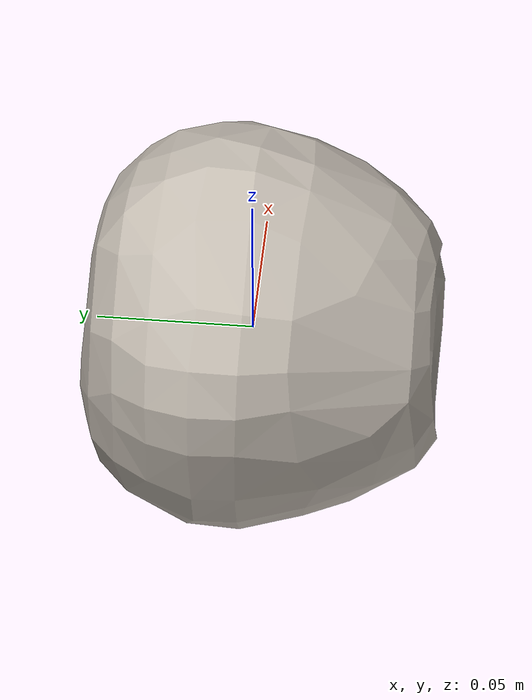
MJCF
<mujoco model="Apple_30">
  <compiler autolimits="true" boundmass="0.01" angle="radian"/>
  <default>
    <default class="/">
      <default class="__VISUAL_MJT__">
        <geom contype="0" conaffinity="0" group="0"/>
      </default>
      <default class="__STRUCTURAL_MJT__">
        <geom contype="8" conaffinity="15" group="4" friction="0.90000000000000002 0.90000000000000002 0.001" solref="0.025000000000000001 1" solimp="0.998 0.998 0.001"/>
      </default>
      <default class="__DYNAMIC_MJT__">
        <geom contype="1" conaffinity="15" group="4" friction="0.90000000000000002 0.90000000000000002 0.001" solref="0.025000000000000001 1" solimp="0.998 0.998 0.001"/>
      </default>
    </default>
  </default>
  <asset>
    <texture name="Apple2_Mat3" type="2d" file="Apple2_AlbedoTransparency3.png"/>
    <material name="material_Apple2_Mat3" class="/" texture="Apple2_Mat3" specular="0.5" shininess="0.5" rgba="1 1 1 1"/>
    <mesh name="Apple_30_apple_b15" class="/" file="Apple_30_apple_b15/Apple_30_apple_b15.obj" scale="1 1 1"/>
  </asset>
  <worldbody>
    <body name="Apple_30">
      <joint name="Apple_30_free" class="/" type="free" pos="0 0 0" axis="0 0 1" stiffness="0" range="0 0" armature="0" damping="0.10000000000000001" frictionloss="0"/>
      <body name="Apple_30_apple_b15" pos="-0 0.0088599999999999998 0" quat="1 0 0 0">
        <geom name="Apple_30_apple_b15" class="__VISUAL_MJT__" type="mesh" material="material_Apple2_Mat3" shellinertia="false" mesh="Apple_30_apple_b15"/>
        <geom name="Apple_30_PrimitiveCollider_0" class="__DYNAMIC_MJT__" type="capsule" size="0.067776963114738464 1.0000000000000001e-05" rgba="0 1 0 1" pos="-0 -0.0088559985160827637 0" quat="0.70710678118654757 0.70710678118654746 0 0"/>
      </body>
    </body>
  </worldbody>
</mujoco>
